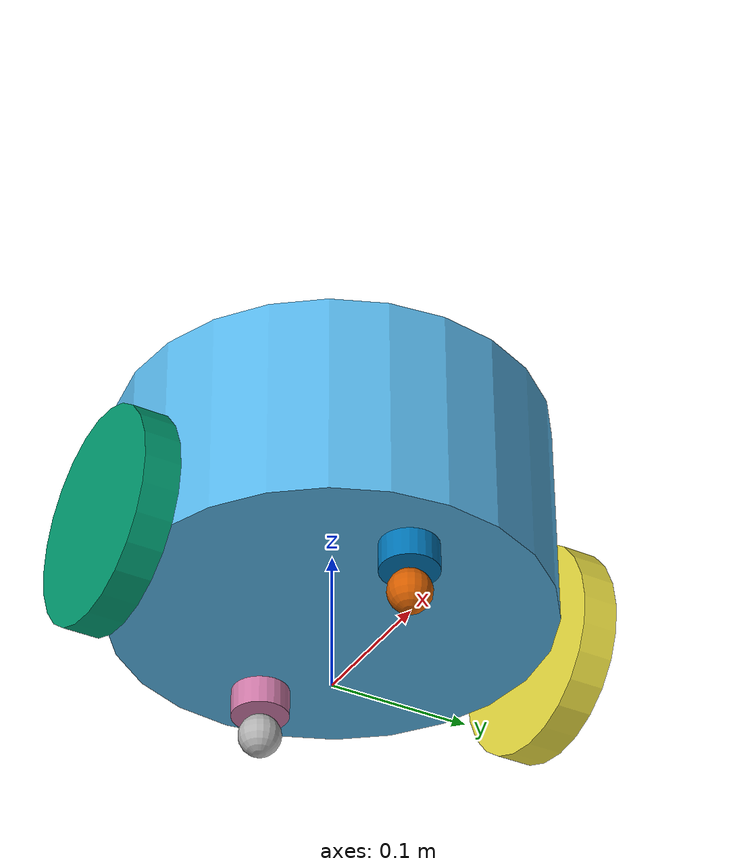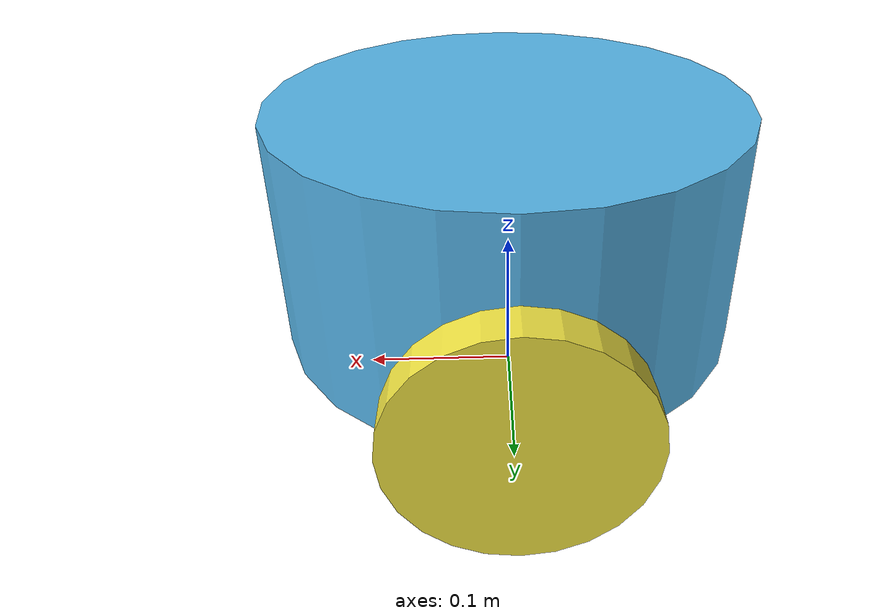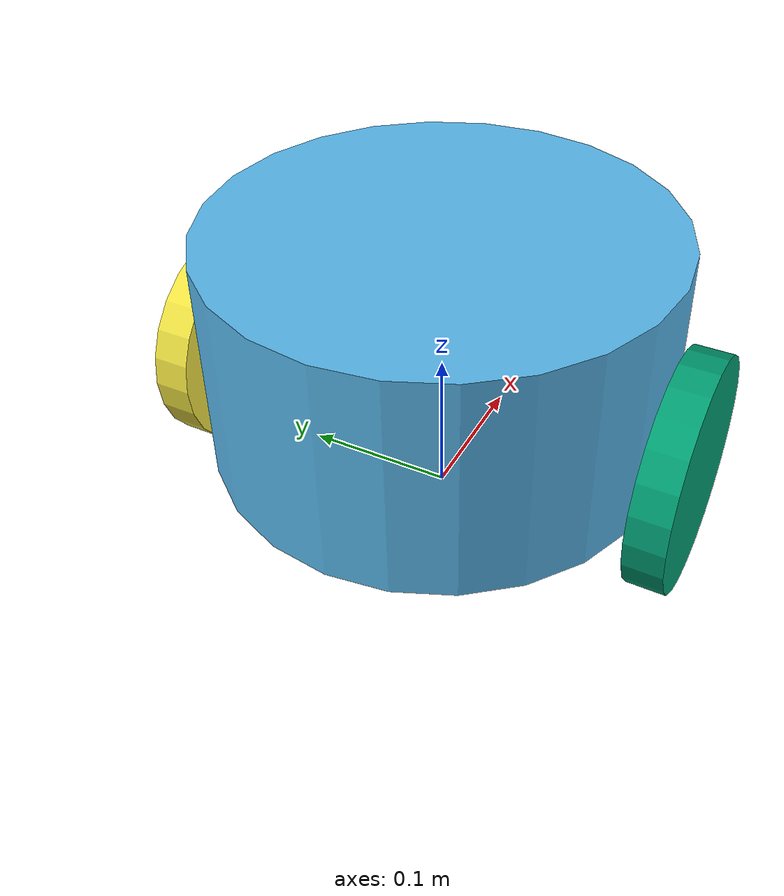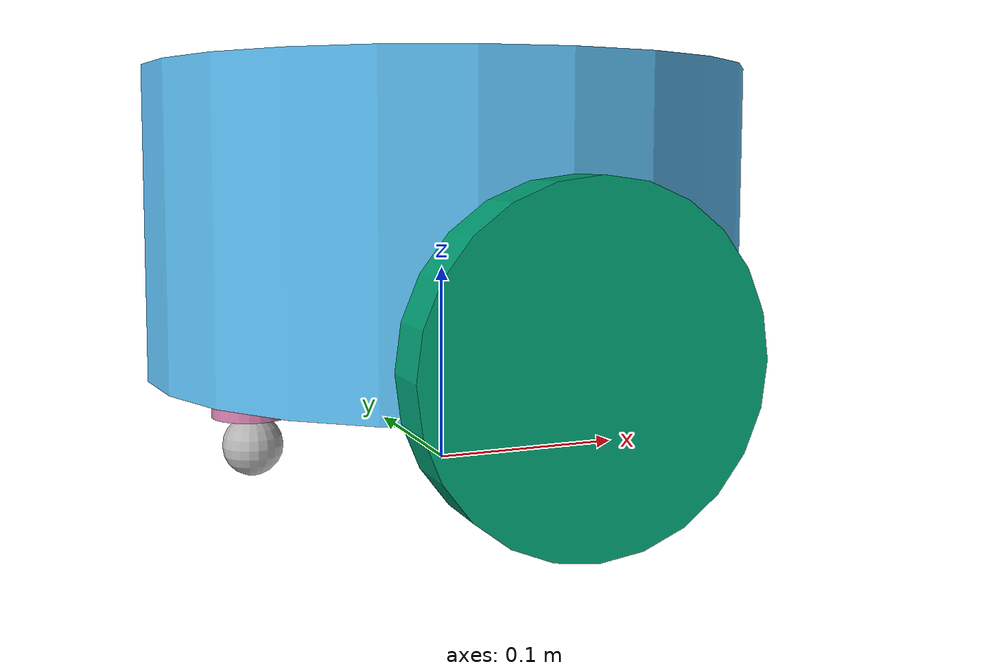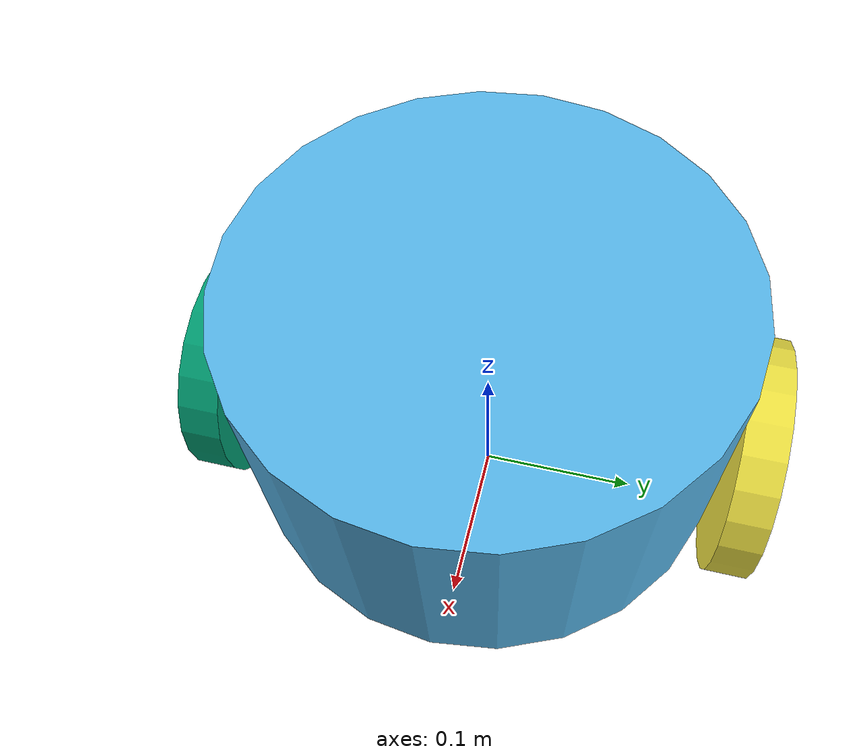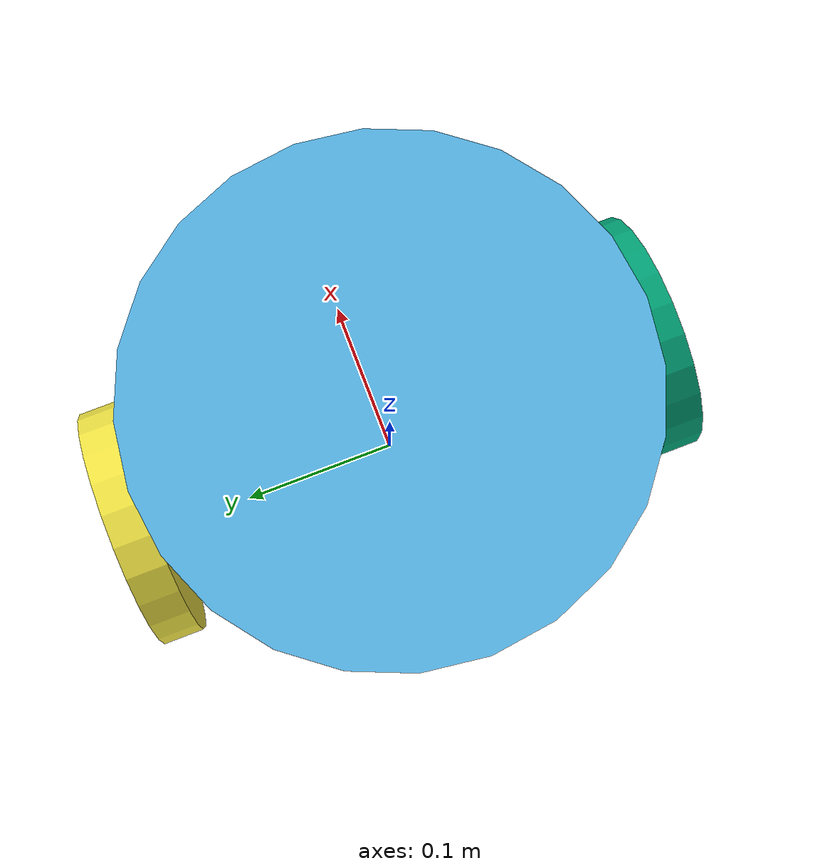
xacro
<?xml version="1.0"?>
<robot name = "robot_502" xmlns:xacro="http://www.ros.org/wiki/xacro">

    <xacro:property name="body_radius" value="0.15" />
    <xacro:property name="body_thick" value="0.15" />

    <xacro:property name="body_mass" value="5" />
    <xacro:property name="body_cm" value="0 0 0" />
    <xacro:property name="body_ixx" value="0.001"/>
    <xacro:property name="body_ixy" value="0.001"/>
    <xacro:property name="body_ixz" value="0.001"/>
    <xacro:property name="body_iyy" value="0.001"/>
    <xacro:property name="body_iyz" value="0.001"/>
    <xacro:property name="body_izz" value="0.001"/>

    <xacro:property name="wheel_radius" value="0.075" />
    <xacro:property name="wheel_thick" value="0.025" />

    <xacro:property name="wheel_mass" value="0.2" />
    <xacro:property name="wheel_cm" value="0 0 0" />
    <xacro:property name="wheel_ixx" value="0.001"/>
    <xacro:property name="wheel_ixy" value="0.001"/>
    <xacro:property name="wheel_ixz" value="0.001"/>
    <xacro:property name="wheel_iyy" value="0.001"/>
    <xacro:property name="wheel_iyz" value="0.001"/>
    <xacro:property name="wheel_izz" value="0.001"/>

    <xacro:property name="caster_base_radius" value="0.02" />
    <xacro:property name="caster_base_thick" value="0.02" />
    <xacro:property name="caster_ball_radius" value="0.015" />

    <xacro:macro name="wheel" params="name trans rot parent">
        <joint name="${parent}_to_${name}" type="continuous">
            <parent link="${parent}"/>
            <child link="${name}_wheel"/>
            <origin rpy="${rot}" xyz="${trans}"/>
            <axis xyz="0 0 1"/>
            <limit effort="30" velocity="1"/>
            <dynamics damping="0" fiction="0"/>
        </joint>

        <link name="${name}_wheel">
            <visual>
                <geometry>
                    <cylinder radius="${wheel_radius}" length="${wheel_thick}"/>
                </geometry>
            </visual>
            <collision>
                <geometry>
                    <cylinder radius="${wheel_radius}" length="${wheel_thick}"/>
                </geometry>
            </collision>
            <inertial>
                <origin xyz="${wheel_cm}" rpy="0 0 0"/>
                <mass value="${wheel_mass}"/>
                <inertia ixx="${wheel_ixx}" ixy="${wheel_ixy}" ixz="${wheel_ixz}" iyy="${wheel_iyy}" iyz="${wheel_iyz}" izz="${wheel_izz}"/>
            </inertial>
        </link>
    </xacro:macro>

    <xacro:macro name="caster" params="name trans rot parent">
        <joint name="${parent}_to_base_${name}" type="fixed">
            <parent link="${parent}"/>
            <child link="base_${name}"/>
            <origin rpy="${rot}" xyz="${trans}"/>
        </joint>

        <link name="base_${name}">
            <visual>
                <geometry>
                    <cylinder radius="${caster_base_radius}" length="${caster_base_thick}"/>
                </geometry>
            </visual>
            <collision>
                <geometry>
                    <cylinder radius="${caster_base_radius}" length="${caster_base_thick}"/>
                </geometry>
            </collision>
        </link>

        <joint name="base_${name}_to_ball_${name}" type="fixed">
            <parent link="base_${name}"/>
            <child link="ball_${name}"/>
            <origin rpy="0 0 0" xyz="0 0 -0.025"/>
        </joint>

        <link name="ball_${name}">
            <visual>
                <geometry>
                    <sphere radius="${caster_ball_radius}"/>
                </geometry>
            </visual>
            <collision>
                <geometry>
                    <sphere radius="${caster_ball_radius}"/>
                </geometry>
            </collision>
        </link>

    </xacro:macro>

    <link name="base_footprint"/>

    <joint name="footprint_to_base" type="fixed">
        <parent link="base_footprint"/>
        <child link="base_link"/>
        <origin rpy="0 0 0" xyz="0 0 0.125"/>
    </joint>

    <link name="base_link">
        <visual>
            <geometry>
                <cylinder radius="${body_radius}" length="${body_thick}"/>
            </geometry>
        </visual>
        <collision>
            <geometry>
                <cylinder radius="${body_radius}" length="${body_thick}"/>
            </geometry>
        </collision>
        <inertial>
            <origin xyz="${body_cm}" rpy="0 0 0"/>
            <mass value="${body_mass}"/>
            <inertia ixx="${body_ixx}" ixy="${body_ixy}" ixz="${body_ixz}" iyy="${body_iyy}" iyz="${body_iyz}" izz="${body_izz}"/>
        </inertial>
    </link>

    <xacro:wheel
        name="right_wheel"
        trans ="0 -0.1625 -0.05"
        rot ="-1.57075 0 0"
        parent="base_link"/>

    <xacro:wheel
        name="left_wheel"
        trans ="0 0.1625 -0.05"
        rot ="-1.57075 0 0"
        parent="base_link"/>

    <xacro:caster
        name="front_caster"
        trans ="0.10 0 -0.085"
        rot ="0 0 0"
        parent="base_link"/>

    <xacro:caster
        name="back_caster"
        trans ="-0.1 0 -0.085"
        rot ="0 0 0"
        parent="base_link"/>

</robot>
